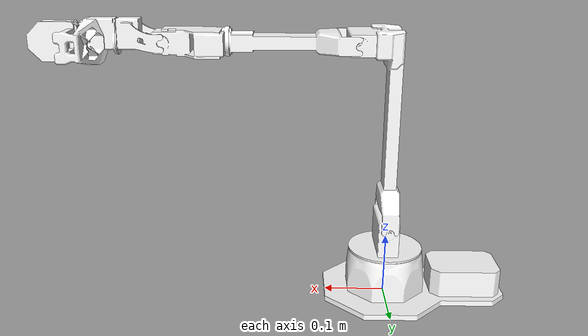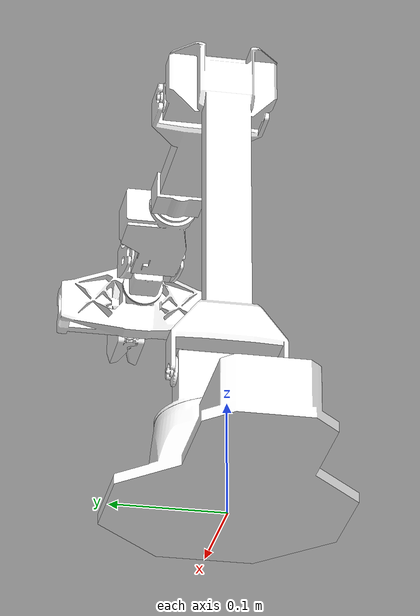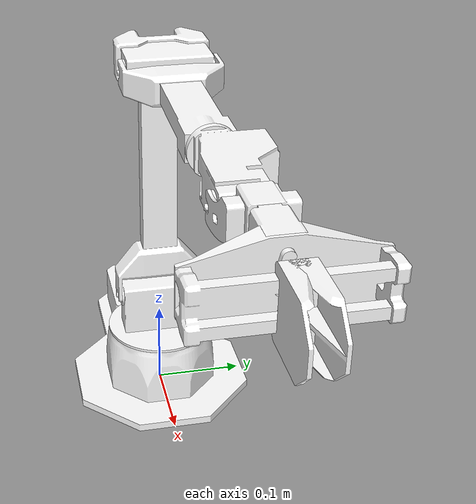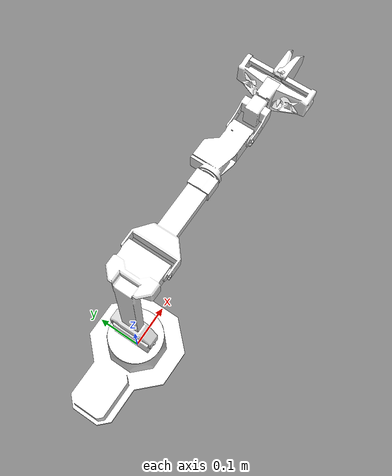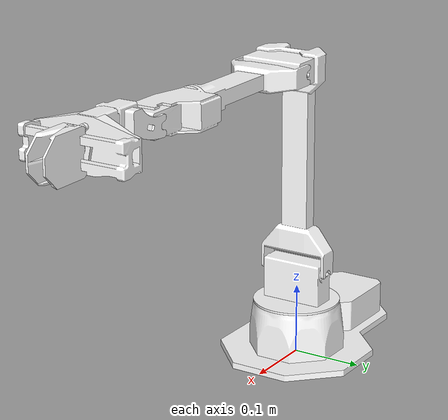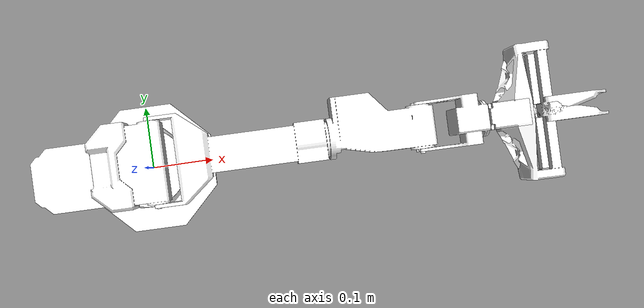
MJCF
<?xml version="1.0" ?>
<mujoco model="vx300s">
	<compiler meshdir="vx300s/meshes" texturedir="vx300s/textures" angle="radian" autolimits="true" balanceinertia="true" boundmass="0.000001" boundinertia="0.000001"/>
	<default>
		<default class="visual">
			<geom contype="0" conaffinity="0"/>
		</default>
		<default class="collision">
			<geom rgba="1.0 0.0 0.0 0.0"/>
		</default>
	</default>
	<asset>
		<mesh name="vx300s_1_base" file="stl/vx300s_1_base.stl" scale="1.0 1.0 1.0"/>
		<mesh name="vx300s_2_shoulder" file="stl/vx300s_2_shoulder.stl" scale="1.0 1.0 1.0"/>
		<mesh name="vx300s_3_upper_arm" file="stl/vx300s_3_upper_arm.stl" scale="1.0 1.0 1.0"/>
		<mesh name="vx300s_4_upper_forearm" file="stl/vx300s_4_upper_forearm.stl" scale="1.0 1.0 1.0"/>
		<mesh name="vx300s_5_lower_forearm" file="stl/vx300s_5_lower_forearm.stl" scale="1.0 1.0 1.0"/>
		<mesh name="vx300s_6_wrist" file="stl/vx300s_6_wrist.stl" scale="1.0 1.0 1.0"/>
		<mesh name="vx300s_7_gripper" file="stl/vx300s_7_gripper.stl" scale="1.0 1.0 1.0"/>
		<mesh name="vx300s_9_gripper_bar" file="stl/vx300s_9_gripper_bar.stl" scale="1.0 1.0 1.0"/>
		<mesh name="vx300s_8_gripper_prop" file="stl/vx300s_8_gripper_prop.stl" scale="1.0 1.0 1.0"/>
		<mesh name="vx300s_10_gripper_finger" file="stl/vx300s_10_gripper_finger.stl" scale="1.0 1.0 1.0"/>
		<material name="black" rgba="1.0 1.0 1.0 1.0" emission="0.0" specular="0.5"/>
	</asset>
	<worldbody>
		<body name="vx300s" pos="0.0 0.0 0.0" quat="1.0 0.0 0.0 0.0">
			<body name="base_link" pos="0.0 0.0 0.0" quat="1.0 0.0 0.0 0.0">
				<geom name="Geom_0" type="mesh" pos="-0.03784382715821266 2.87049459757327e-08 0.029133988544344902" quat="0.0 0.6969158053398132 0.0 0.7171529531478882" mesh="vx300s_1_base" material="black" class="visual"/>
				<geom name="Geom_1" type="mesh" pos="-0.03784382715821266 2.87049459757327e-08 0.029133988544344902" quat="0.0 0.6969158053398132 0.0 0.7171529531478882" mesh="vx300s_1_base" class="collision"/>
				<body name="shoulder_link" pos="0.0 0.0 0.07900000363588333" quat="1.0 0.0 0.0 0.0">
					<inertial mass="0.7986140251159668" pos="0.0002592329983599484 -3.3552000786585268e-06 0.011612899601459503" quat="-0.4761188328266144 0.47608283162117004 0.5227898359298706 0.5228258371353149" diaginertia="0.0012015600223094225 0.0011374399764463305 0.0009387999889440835"/>
					<geom name="Geom_2" type="mesh" pos="0.0006325716967694461 -2.2884038414217045e-12 0.02039145678281784" quat="-0.5 0.5 0.5 0.5" mesh="vx300s_2_shoulder" material="black" class="visual"/>
					<geom name="Geom_3" type="mesh" pos="0.0006325716967694461 -2.2884038414217045e-12 0.02039145678281784" quat="-0.5 0.5 0.5 0.5" mesh="vx300s_2_shoulder" class="collision"/>
					<joint name="waist" type="hinge" pos="0.0 0.0 0.0" range="-3.141580104827881 3.141580104827881" axis="0.0 0.0 1.0"/>
					<body name="upper_arm_link" pos="0.0 0.0 0.04805000126361847" quat="1.0 0.0 0.0 0.0">
						<inertial mass="0.7925919890403748" pos="0.020694900304079056 4.000000053405728e-10 0.22645899653434753" quat="0.0 0.07284581661224365 0.0 0.9973432421684265" diaginertia="0.009113379754126072 0.008925000205636024 0.0007593170157633722"/>
						<geom name="Geom_4" type="mesh" pos="0.018794847652316093 9.543430490310811e-10 0.20381388068199158" quat="0.0 0.06868105381727219 0.0 0.9976386427879333" mesh="vx300s_3_upper_arm" material="black" class="visual"/>
						<geom name="Geom_5" type="mesh" pos="0.018794847652316093 9.543430490310811e-10 0.20381388068199158" quat="0.0 0.06868105381727219 0.0 0.9976386427879333" mesh="vx300s_3_upper_arm" class="collision"/>
						<joint name="shoulder" type="hinge" pos="0.0 0.0 0.0" range="-1.8500499725341797 1.2566399574279785" axis="0.0 1.0 0.0"/>
						<body name="upper_forearm_link" pos="0.05954999849200249 0.0 0.30000001192092896" quat="1.0 0.0 0.0 0.0">
							<inertial mass="0.32222801446914673" pos="0.10572300106287003 0.0 0.0" quat="-0.0006216310430318117 0.7047240734100342 0.010529201477766037 0.7094030976295471" diaginertia="0.0014410699950531125 0.0013422799529507756 0.0001520469959359616"/>
							<geom name="Geom_6" type="mesh" pos="0.09150298684835434 4.662075525629916e-08 5.335134645179096e-08" quat="-6.086713710828917e-07 0.7071062326431274 6.086723374210123e-07 0.7071073651313782" mesh="vx300s_4_upper_forearm" material="black" class="visual"/>
							<geom name="Geom_7" type="mesh" pos="0.09150298684835434 4.662075525629916e-08 5.335134645179096e-08" quat="-6.086713710828917e-07 0.7071062326431274 6.086723374210123e-07 0.7071073651313782" mesh="vx300s_4_upper_forearm" class="collision"/>
							<joint name="elbow" type="hinge" pos="0.0 0.0 0.0" range="-1.762779951095581 1.6057000160217285" axis="0.0 1.0 0.0"/>
							<body name="lower_forearm_link" pos="0.20000000298023224 0.0 0.0" quat="1.0 0.0 0.0 0.0">
								<inertial mass="0.4148229956626892" pos="0.051347699016332626 0.006804619915783405 0.0" quat="-0.7026039361953735 -0.07967239618301392 -0.7026039361953735 0.07967239618301392" diaginertia="0.0005911000189371407 0.0005464929854497313 0.00015570700634270906"/>
								<geom name="Geom_8" type="mesh" pos="0.04686346650123596 0.0060616107657551765 -3.6068836379854474e-06" quat="-0.7044361233711243 -0.05985187739133835 -0.7046372294425964 0.060612332075834274" mesh="vx300s_5_lower_forearm" material="black" class="visual"/>
								<geom name="Geom_9" type="mesh" pos="0.04686346650123596 0.0060616107657551765 -3.6068836379854474e-06" quat="-0.7044361233711243 -0.05985187739133835 -0.7046372294425964 0.060612332075834274" mesh="vx300s_5_lower_forearm" class="collision"/>
								<joint name="forearm_roll" type="hinge" pos="0.0 0.0 0.0" range="-3.141580104827881 3.141580104827881" axis="1.0 0.0 0.0"/>
								<body name="wrist_link" pos="0.10000000149011612 0.0 0.0" quat="1.0 0.0 0.0 0.0">
									<inertial mass="0.11539500206708908" pos="0.0467430017888546 -7.665200428164098e-06 0.010564999654889107" quat="-0.0010019101900979877 0.5445860624313354 0.002658300334587693 0.8387001156806946" diaginertia="5.457070074044168e-05 4.631009869626723e-05 4.326919952291064e-05"/>
									<geom name="Geom_10" type="mesh" pos="0.04164133220911026 -0.00016056399908848107 0.007847931236028671" quat="0.0 0.6176437139511108 0.0 0.7864580154418945" mesh="vx300s_6_wrist" material="black" class="visual"/>
									<geom name="Geom_11" type="mesh" pos="0.04164133220911026 -0.00016056399908848107 0.007847931236028671" quat="0.0 0.6176437139511108 0.0 0.7864580154418945" mesh="vx300s_6_wrist" class="collision"/>
									<joint name="wrist_angle" type="hinge" pos="0.0 0.0 0.0" range="-1.8674999475479126 2.2340199947357178" axis="0.0 1.0 0.0"/>
									<body name="gripper_link" pos="0.06974399834871292 0.0 0.0" quat="1.0 0.0 0.0 0.0">
										<inertial mass="0.2516520023345947" pos="0.039566200226545334 -2.5631101152612246e-07 0.004006490111351013" quat="0.6203300356864929 0.6199160218238831 -0.339682012796402 0.33986902236938477" diaginertia="0.0006895459955558181 0.0006503160111606121 0.00046814201050437987"/>
										<geom name="Geom_12" type="mesh" pos="0.019865669310092926 -7.045326544385944e-09 0.010150989517569542" quat="0.684739351272583 0.17644278705120087 0.17644278705120087 0.684739351272583" mesh="vx300s_7_gripper" material="black" class="visual"/>
										<geom name="Geom_13" type="mesh" pos="0.019865669310092926 -7.045326544385944e-09 0.010150989517569542" quat="0.684739351272583 0.17644278705120087 0.17644278705120087 0.684739351272583" mesh="vx300s_7_gripper" class="collision"/>
										<geom name="Geom_14" type="mesh" pos="0.04932825639843941 -4.465221081773052e-07 -0.0012095709098502994" quat="-0.06845773011445999 0.06845780462026596 0.7037239670753479 0.7038463354110718" mesh="vx300s_9_gripper_bar" material="black" class="visual"/>
										<geom name="Geom_15" type="mesh" pos="0.04932825639843941 -4.465221081773052e-07 -0.0012095709098502994" quat="-0.06845773011445999 0.06845780462026596 0.7037239670753479 0.7038463354110718" mesh="vx300s_9_gripper_bar" class="collision"/>
										<joint name="wrist_rotate" type="hinge" pos="0.0 0.0 0.0" range="-3.141580104827881 3.141580104827881" axis="1.0 0.0 0.0"/>
										<body name="left_finger_link" pos="0.06870000064373016 0.0 0.0" quat="1.0 0.0 0.0 0.0">
											<inertial mass="0.03479599952697754" pos="0.017343999817967415 -0.006069200113415718 0.0" quat="0.4493638575077057 0.4493638575077057 -0.5459598302841187 -0.5459598302841187" diaginertia="2.4800299797789194e-05 1.4170000213198364e-05 1.2079700354661327e-05"/>
											<geom name="Geom_18" type="mesh" pos="0.017321372404694557 -0.005584105383604765 3.1368177499935257e-10" quat="-0.6409380435943604 0.0 0.0 0.7675926089286804" mesh="vx300s_10_gripper_finger" material="black" class="visual"/>
											<geom name="left_finger_pad_0" type="box" pos="0.04780000075697899 -0.012500000186264515 0.010599999688565731" quat="0.6530107855796814 0.6530107855796814 -0.2712506353855133 0.2712506353855133" size="0.014050000347197056 0.014050000347197056 0.0010000000474974513" class="collision"/>
											<geom name="left_finger_pad_1" type="box" pos="0.04780000075697899 -0.012500000186264515 -0.010599999688565731" quat="0.6530107855796814 0.6530107855796814 -0.2712506353855133 0.2712506353855133" size="0.014050000347197056 0.014050000347197056 0.0010000000474974513" class="collision"/>
											<geom name="left_finger_pad_2" type="box" pos="0.057100001722574234 -0.012500000186264515 0.0" quat="0.7071067690849304 0.7071067690849304 0.0 0.0" size="0.010579999536275864 0.010579999536275864 0.0010000000474974513" class="collision"/>
											<geom name="left_finger_pad_3" type="box" pos="0.03779999911785126 -0.012500000186264515 0.0" quat="0.7071067690849304 0.7071067690849304 0.0 0.0" size="0.009999999776482582 0.010499999858438969 0.0010000000474974513" class="collision"/>
											<geom name="left_finger_pad_4" type="box" pos="0.012799999676644802 -0.012500000186264515 0.0" quat="0.7071067690849304 0.7071067690849304 0.0 0.0" size="0.014999999664723873 0.010499999858438969 0.0010000000474974513" class="collision"/>
											<geom name="left_finger_pad_5" type="box" pos="0.03779999911785126 -0.012500000186264515 0.019999999552965164" quat="0.7071067690849304 0.7071067690849304 0.0 0.0" size="0.009999999776482582 0.010499999858438969 0.0010000000474974513" class="collision"/>
											<geom name="left_finger_pad_6" type="box" pos="0.012799999676644802 -0.012500000186264515 0.019999999552965164" quat="0.7071067690849304 0.7071067690849304 0.0 0.0" size="0.014999999664723873 0.010499999858438969 0.0010000000474974513" class="collision"/>
											<geom name="left_finger_pad_7" type="box" pos="0.03779999911785126 -0.012500000186264515 -0.019999999552965164" quat="0.7071067690849304 0.7071067690849304 0.0 0.0" size="0.009999999776482582 0.010499999858438969 0.0010000000474974513" class="collision"/>
											<geom name="left_finger_pad_8" type="box" pos="0.012799999676644802 -0.012500000186264515 -0.019999999552965164" quat="0.7071067690849304 0.7071067690849304 0.0 0.0" size="0.014999999664723873 0.010499999858438969 0.0010000000474974513" class="collision"/>
											<joint name="left_finger" type="slide" pos="0.0 0.0 0.0" range="0.020999999716877937 0.05700000002980232" axis="0.0 1.0 0.0"/>
										</body>
										<body name="gripper_prop_link" pos="0.048500001430511475 0.0 0.0" quat="1.0 0.0 0.0 0.0">
											<inertial mass="0.00800899975001812" pos="0.002377999946475029 2.8500000581743734e-08 0.0" quat="0.0 0.0 0.8976981043815613 0.4406110644340515" diaginertia="4.297899977245834e-06 2.8868000754300738e-06 1.53140001657448e-06"/>
											<geom name="Geom_16" type="mesh" pos="2.7583901829331126e-09 0.00024063170712906867 -0.0005006406572647393" quat="0.0 0.0 -0.02795681729912758 0.999609112739563" mesh="vx300s_8_gripper_prop" material="black" class="visual"/>
											<geom name="Geom_17" type="mesh" pos="2.7583901829331126e-09 0.00024063170712906867 -0.0005006406572647393" quat="0.0 0.0 -0.02795681729912758 0.999609112739563" mesh="vx300s_8_gripper_prop" class="collision"/>
										</body>
										<body name="right_finger_link" pos="0.06870000064373016 0.0 0.0" quat="1.0 0.0 0.0 0.0">
											<inertial mass="0.03479599952697754" pos="0.017343999817967415 0.006069200113415718 0.0" quat="0.449369877576828 -0.449369877576828 0.5459548830986023 -0.5459548830986023" diaginertia="2.4800199753372e-05 1.4170000213198364e-05 1.2079800399078522e-05"/>
											<geom name="Geom_28" type="mesh" pos="0.017321372404694557 0.005584105383604765 -3.1368177499935257e-10" quat="0.0 0.6409380435943604 0.7675926089286804 0.0" mesh="vx300s_10_gripper_finger" material="black" class="visual"/>
											<geom name="right_finger_pad_0" type="box" pos="0.04780000075697899 0.012500000186264515 0.010599999688565731" quat="0.6530107855796814 0.6530107855796814 -0.2712506353855133 0.2712506353855133" size="0.014050000347197056 0.014050000347197056 0.0010000000474974513" class="collision"/>
											<geom name="right_finger_pad_1" type="box" pos="0.04780000075697899 0.012500000186264515 -0.010599999688565731" quat="0.6530107855796814 0.6530107855796814 -0.2712506353855133 0.2712506353855133" size="0.014050000347197056 0.014050000347197056 0.0010000000474974513" class="collision"/>
											<geom name="right_finger_pad_2" type="box" pos="0.057100001722574234 0.012500000186264515 0.0" quat="0.7071067690849304 0.7071067690849304 0.0 0.0" size="0.010579999536275864 0.010579999536275864 0.0010000000474974513" class="collision"/>
											<geom name="right_finger_pad_3" type="box" pos="0.03779999911785126 0.012500000186264515 0.0" quat="0.7071067690849304 0.7071067690849304 0.0 0.0" size="0.009999999776482582 0.010499999858438969 0.0010000000474974513" class="collision"/>
											<geom name="right_finger_pad_4" type="box" pos="0.012799999676644802 0.012500000186264515 0.0" quat="0.7071067690849304 0.7071067690849304 0.0 0.0" size="0.014999999664723873 0.010499999858438969 0.0010000000474974513" class="collision"/>
											<geom name="right_finger_pad_5" type="box" pos="0.03779999911785126 0.012500000186264515 0.019999999552965164" quat="0.7071067690849304 0.7071067690849304 0.0 0.0" size="0.009999999776482582 0.010499999858438969 0.0010000000474974513" class="collision"/>
											<geom name="right_finger_pad_6" type="box" pos="0.012799999676644802 0.012500000186264515 0.019999999552965164" quat="0.7071067690849304 0.7071067690849304 0.0 0.0" size="0.014999999664723873 0.010499999858438969 0.0010000000474974513" class="collision"/>
											<geom name="right_finger_pad_7" type="box" pos="0.03779999911785126 0.012500000186264515 -0.019999999552965164" quat="0.7071067690849304 0.7071067690849304 0.0 0.0" size="0.009999999776482582 0.010499999858438969 0.0010000000474974513" class="collision"/>
											<geom name="right_finger_pad_8" type="box" pos="0.012799999676644802 0.012500000186264515 -0.019999999552965164" quat="0.7071067690849304 0.7071067690849304 0.0 0.0" size="0.014999999664723873 0.010499999858438969 0.0010000000474974513" class="collision"/>
											<joint name="right_finger" type="slide" pos="0.0 0.0 0.0" range="-0.05700000002980232 -0.020999999716877937" axis="0.0 1.0 0.0"/>
										</body>
									</body>
								</body>
							</body>
						</body>
					</body>
				</body>
			</body>
		</body>
	</worldbody>
	<equality>
		<joint name="Equality_0" joint1="left_finger" joint2="right_finger" polycoef="0.0 -1.0 0.0 0.0 0.0"/>
	</equality>
</mujoco>
